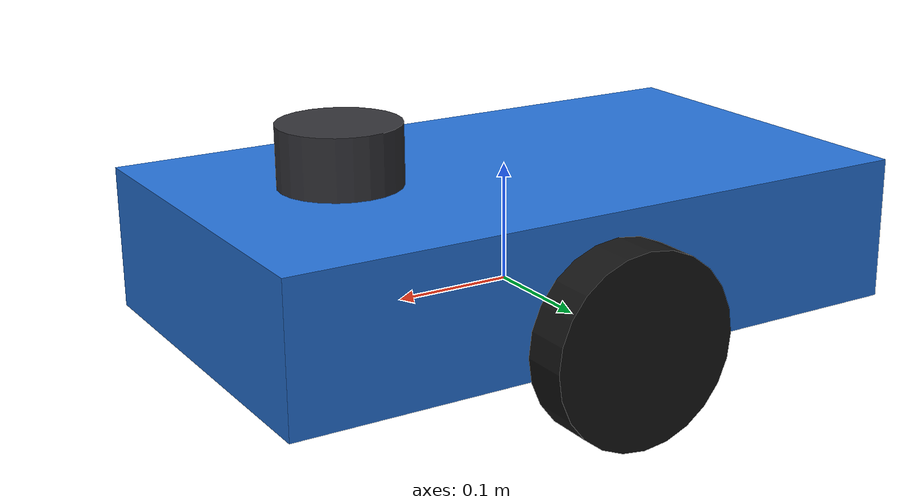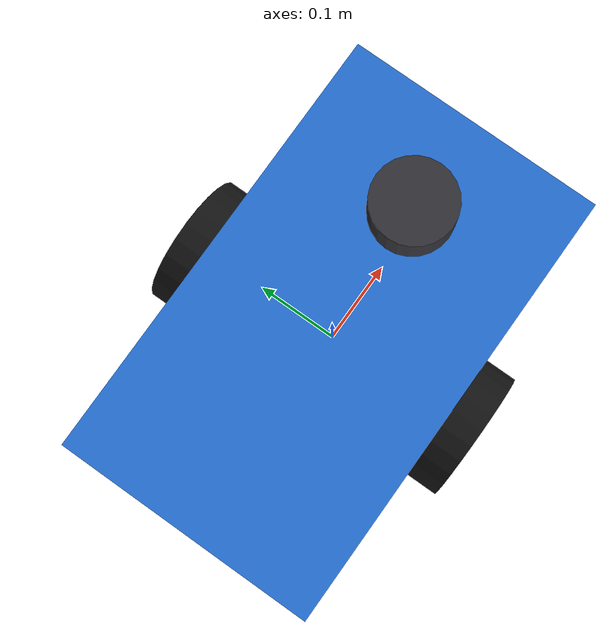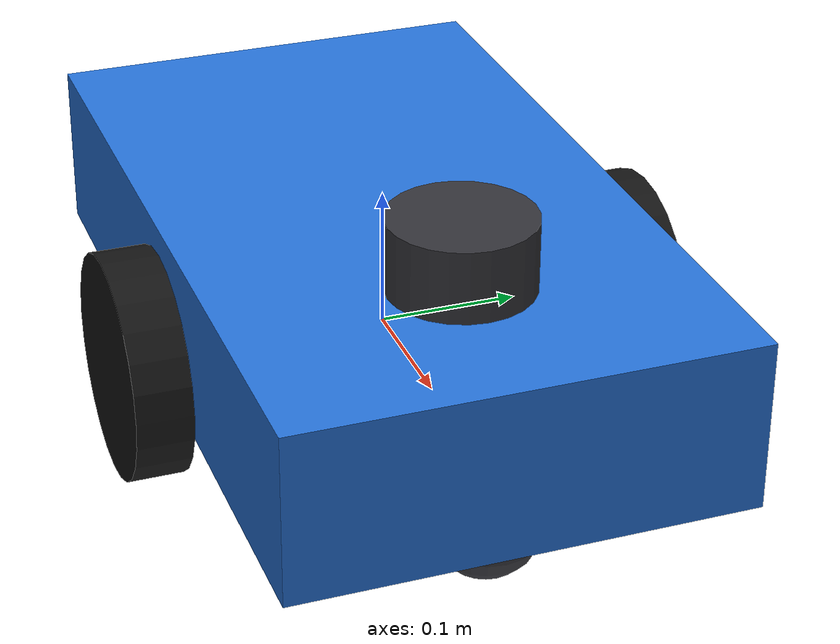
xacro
<?xml version="1.0"?>
<robot xmlns:xacro="http://www.ros.org/wiki/xacro" name="warehouse_amr">

  <!--  arguments (set from the launch file)  -->
  <xacro:arg name="robot_ns" default="robot_1"/>
  <xacro:arg name="accent_rgba" default="0.15 0.45 0.85 1.0"/>
  <xacro:arg name="lidar_rate" default="10"/>
  <xacro:arg name="lidar_samples" default="360"/>
  <xacro:arg name="lidar_range_max" default="12.0"/>
  <xacro:arg name="imu_rate" default="50"/>
  <xacro:arg name="odom_rate" default="30"/>

  <xacro:property name="ns" value="$(arg robot_ns)"/>
  <xacro:property name="lidar_rate" value="$(arg lidar_rate)"/>
  <xacro:property name="lidar_samples" value="$(arg lidar_samples)"/>
  <xacro:property name="lidar_range_max" value="$(arg lidar_range_max)"/>
  <xacro:property name="imu_rate" value="$(arg imu_rate)"/>
  <xacro:property name="odom_rate" value="$(arg odom_rate)"/>

  <!--  geometry / mass  -->
  <xacro:property name="chassis_x" value="0.55"/>
  <xacro:property name="chassis_y" value="0.32"/>
  <xacro:property name="chassis_z" value="0.12"/>
  <xacro:property name="chassis_mass" value="12.0"/>
  <xacro:property name="chassis_oz" value="0.04"/>          <!-- chassis centre above axle -->

  <xacro:property name="wheel_radius" value="0.08"/>
  <xacro:property name="wheel_width" value="0.04"/>
  <xacro:property name="wheel_mass" value="1.0"/>
  <xacro:property name="wheel_y" value="0.18"/>             <!-- |y| of wheel centre -->

  <xacro:property name="caster_radius" value="0.04"/>
  <xacro:property name="caster_x" value="0.20"/>
  <xacro:property name="caster_mass" value="0.2"/>

  <xacro:property name="max_lin_vel" value="1.0"/>
  <xacro:property name="max_ang_vel" value="2.0"/>

  <!--  materials  -->
  <material name="accent"><color rgba="$(arg accent_rgba)"/></material>
  <material name="wheel_black"><color rgba="0.08 0.08 0.08 1"/></material>
  <material name="dark_grey"><color rgba="0.20 0.20 0.22 1"/></material>

  <!--  inertia helpers  -->
  <xacro:macro name="box_inertial" params="m x y z oz:=0">
    <inertial>
      <origin xyz="0 0 ${oz}" rpy="0 0 0"/>
      <mass value="${m}"/>
      <inertia ixx="${m*(y*y+z*z)/12.0}" ixy="0" ixz="0"
               iyy="${m*(x*x+z*z)/12.0}" iyz="0" izz="${m*(x*x+y*y)/12.0}"/>
    </inertial>
  </xacro:macro>

  <xacro:macro name="sphere_inertial" params="m r">
    <inertial>
      <mass value="${m}"/>
      <inertia ixx="${0.4*m*r*r}" ixy="0" ixz="0" iyy="${0.4*m*r*r}" iyz="0" izz="${0.4*m*r*r}"/>
    </inertial>
  </xacro:macro>

  <!--  base_link (chassis)  -->
  <link name="base_link">
    <visual>
      <origin xyz="0 0 ${chassis_oz}" rpy="0 0 0"/>
      <geometry><box size="${chassis_x} ${chassis_y} ${chassis_z}"/></geometry>
      <material name="accent"/>
    </visual>
    <collision>
      <origin xyz="0 0 ${chassis_oz}" rpy="0 0 0"/>
      <geometry><box size="${chassis_x} ${chassis_y} ${chassis_z}"/></geometry>
    </collision>
    <xacro:box_inertial m="${chassis_mass}" x="${chassis_x}" y="${chassis_y}" z="${chassis_z}" oz="${chassis_oz}"/>
  </link>

  <!--  drive wheels (axis +y, left = +y per REP-103)  -->
  <xacro:macro name="drive_wheel" params="side y">
    <link name="${side}_wheel_link">
      <visual>
        <origin xyz="0 0 0" rpy="${pi/2} 0 0"/>
        <geometry><cylinder radius="${wheel_radius}" length="${wheel_width}"/></geometry>
        <material name="wheel_black"/>
      </visual>
      <collision>
        <origin xyz="0 0 0" rpy="${pi/2} 0 0"/>
        <geometry><cylinder radius="${wheel_radius}" length="${wheel_width}"/></geometry>
      </collision>
      <inertial>
        <mass value="${wheel_mass}"/>
        <inertia ixx="${wheel_mass*(3*wheel_radius*wheel_radius+wheel_width*wheel_width)/12.0}" ixy="0" ixz="0"
                 iyy="${0.5*wheel_mass*wheel_radius*wheel_radius}" iyz="0"
                 izz="${wheel_mass*(3*wheel_radius*wheel_radius+wheel_width*wheel_width)/12.0}"/>
      </inertial>
    </link>
    <joint name="${side}_wheel_joint" type="continuous">
      <parent link="base_link"/>
      <child link="${side}_wheel_link"/>
      <origin xyz="0 ${y} 0" rpy="0 0 0"/>
      <axis xyz="0 1 0"/>
    </joint>
    <gazebo reference="${side}_wheel_link">
      <mu1>1.0</mu1>
      <mu2>1.0</mu2>
    </gazebo>
  </xacro:macro>

  <xacro:drive_wheel side="left" y="${wheel_y}"/>
  <xacro:drive_wheel side="right" y="${-wheel_y}"/>

  <!--  frictionless casters (front + rear: stable under braking)  -->
  <xacro:macro name="caster" params="name x">
    <link name="${name}_link">
      <visual>
        <geometry><sphere radius="${caster_radius}"/></geometry>
        <material name="dark_grey"/>
      </visual>
      <collision>
        <geometry><sphere radius="${caster_radius}"/></geometry>
      </collision>
      <xacro:sphere_inertial m="${caster_mass}" r="${caster_radius}"/>
    </link>
    <joint name="${name}_joint" type="fixed">
      <parent link="base_link"/>
      <child link="${name}_link"/>
      <origin xyz="${x} 0 ${caster_radius - wheel_radius}" rpy="0 0 0"/>
    </joint>
    <gazebo reference="${name}_link">
      <mu1>0.0</mu1>
      <mu2>0.0</mu2>
    </gazebo>
  </xacro:macro>

  <xacro:caster name="caster_front" x="${caster_x}"/>
  <xacro:caster name="caster_rear" x="${-caster_x}"/>

  <!--  LiDAR  -->
  <link name="lidar_link">
    <visual>
      <geometry><cylinder radius="0.05" length="0.05"/></geometry>
      <material name="dark_grey"/>
    </visual>
    <inertial>
      <mass value="0.2"/>
      <inertia ixx="0.0001" ixy="0" ixz="0" iyy="0.0001" iyz="0" izz="0.0001"/>
    </inertial>
  </link>
  <joint name="lidar_joint" type="fixed">
    <parent link="base_link"/>
    <child link="lidar_link"/>
    <origin xyz="0.15 0 0.13" rpy="0 0 0"/>
  </joint>

  <!--  IMU  -->
  <link name="imu_link">
    <inertial>
      <mass value="0.05"/>
      <inertia ixx="0.00001" ixy="0" ixz="0" iyy="0.00001" iyz="0" izz="0.00001"/>
    </inertial>
  </link>
  <joint name="imu_joint" type="fixed">
    <parent link="base_link"/>
    <child link="imu_link"/>
    <origin xyz="0 0 0.10" rpy="0 0 0"/>
  </joint>

  <!--  Gazebo: sensors  -->
  <gazebo reference="lidar_link">
    <sensor name="lidar" type="gpu_lidar">
      <gz_frame_id>${ns}/lidar_link</gz_frame_id>
      <topic>/${ns}/scan</topic>
      <update_rate>${lidar_rate}</update_rate>
      <always_on>true</always_on>
      <visualize>false</visualize>
      <lidar>
        <scan>
          <horizontal>
            <samples>${lidar_samples}</samples>
            <resolution>1</resolution>
            <min_angle>-3.14159</min_angle>
            <max_angle>3.14159</max_angle>
          </horizontal>
        </scan>
        <range>
          <min>0.12</min>
          <max>${lidar_range_max}</max>
          <resolution>0.01</resolution>
        </range>
        <noise>
          <type>gaussian</type>
          <mean>0.0</mean>
          <stddev>0.01</stddev>
        </noise>
      </lidar>
    </sensor>
  </gazebo>

  <gazebo reference="imu_link">
    <sensor name="imu" type="imu">
      <gz_frame_id>${ns}/imu_link</gz_frame_id>
      <topic>/${ns}/imu</topic>
      <update_rate>${imu_rate}</update_rate>
      <always_on>true</always_on>
      <visualize>false</visualize>
      <imu>
        <angular_velocity>
          <x><noise type="gaussian"><mean>0.0</mean><stddev>0.0017</stddev></noise></x>
          <y><noise type="gaussian"><mean>0.0</mean><stddev>0.0017</stddev></noise></y>
          <z><noise type="gaussian"><mean>0.0</mean><stddev>0.0017</stddev></noise></z>
        </angular_velocity>
        <linear_acceleration>
          <x><noise type="gaussian"><mean>0.0</mean><stddev>0.017</stddev></noise></x>
          <y><noise type="gaussian"><mean>0.0</mean><stddev>0.017</stddev></noise></y>
          <z><noise type="gaussian"><mean>0.0</mean><stddev>0.017</stddev></noise></z>
        </linear_acceleration>
      </imu>
    </sensor>
  </gazebo>

  <!--  Gazebo: drive + odometry + joint states  -->
  <gazebo>
    <plugin filename="gz-sim-diff-drive-system" name="gz::sim::systems::DiffDrive">
      <left_joint>left_wheel_joint</left_joint>
      <right_joint>right_wheel_joint</right_joint>
      <wheel_separation>${2*wheel_y}</wheel_separation>
      <wheel_radius>${wheel_radius}</wheel_radius>
      <topic>/${ns}/cmd_vel</topic>
      <odom_topic>/${ns}/odom</odom_topic>
      <tf_topic>/${ns}/tf</tf_topic>
      <frame_id>${ns}/odom</frame_id>
      <child_frame_id>${ns}/base_link</child_frame_id>
      <odom_publish_frequency>$(arg odom_rate)</odom_publish_frequency>
      <max_linear_velocity>${max_lin_vel}</max_linear_velocity>
      <min_linear_velocity>${-max_lin_vel}</min_linear_velocity>
      <max_angular_velocity>${max_ang_vel}</max_angular_velocity>
      <min_angular_velocity>${-max_ang_vel}</min_angular_velocity>
      <max_linear_acceleration>1.5</max_linear_acceleration>
      <min_linear_acceleration>-1.5</min_linear_acceleration>
      <max_angular_acceleration>3.0</max_angular_acceleration>
      <min_angular_acceleration>-3.0</min_angular_acceleration>
    </plugin>

    <plugin filename="gz-sim-joint-state-publisher-system" name="gz::sim::systems::JointStatePublisher">
      <topic>/${ns}/joint_states</topic>
      <joint_name>left_wheel_joint</joint_name>
      <joint_name>right_wheel_joint</joint_name>
    </plugin>
  </gazebo>

</robot>
